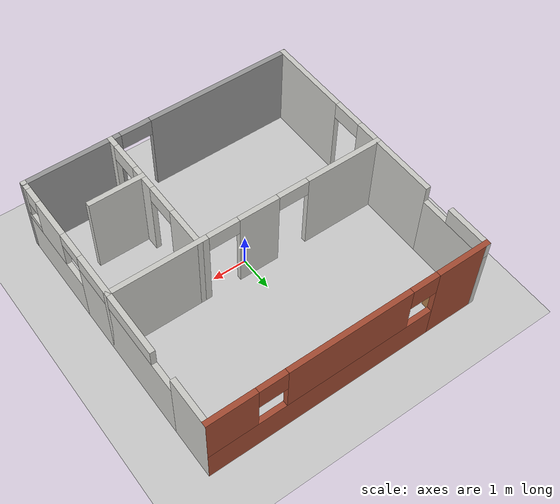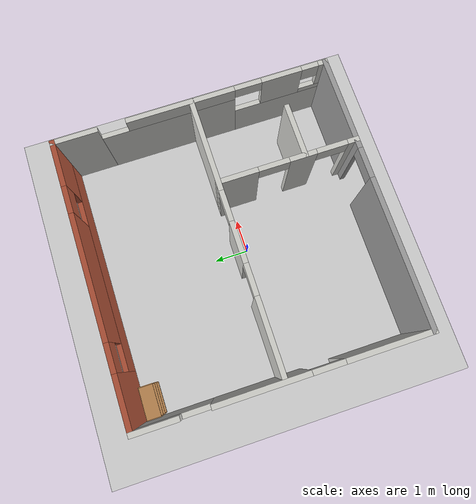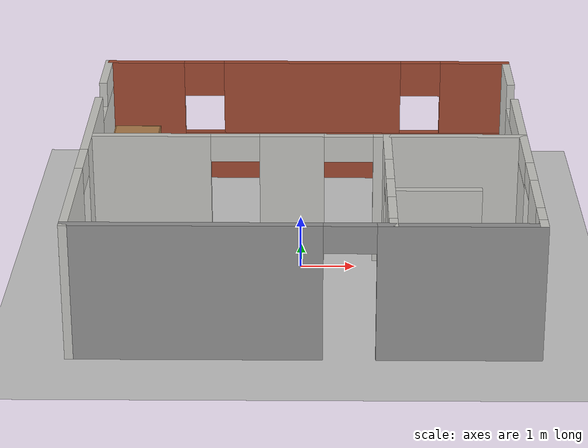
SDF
<sdf version="1.6">
 <world name="default">
  <model name="ground_plane">
   <static>1</static>
   <link name="link">
    <collision name="collision">
     <geometry><plane><normal>0 0 1</normal><size>100 100</size></plane></geometry>
     <surface><friction><ode><mu>100</mu><mu2>50</mu2></ode></friction></surface>
    </collision>
    <visual name="visual">
     <cast_shadows>0</cast_shadows>
     <geometry><plane><normal>0 0 1</normal><size>100 100</size></plane></geometry>
     <material>
      <script><uri>file://media/materials/scripts/gazebo.material</uri><name>Gazebo/Grey</name></script>
     </material>
    </visual>
   </link>
  </model>
  <model name="apartment_v2">
   <pose>0.079383 0.338435 0 0 -0 0</pose>
   <link name="Wall_0">
    <pose>-4 0 0 0 -0 1.5708</pose>
    <visual name="Wall_0_Visual_0">
     <pose>-2.83835 0 1.25 0 -0 0</pose>
     <geometry><box><size>2.47329 0.15 2.5</size></box></geometry>
     <material>
      <script><uri>file://media/materials/scripts/gazebo.material</uri><name>Gazebo/CeilingTiled</name></script>
      <ambient>1 1 1 1</ambient>
     </material>
     <meta><layer>0</layer></meta>
    </visual>
    <collision name="Wall_0_Collision_0">
     <geometry><box><size>2.47329 0.15 2.5</size></box></geometry>
     <pose>-2.83835 0 1.25 0 -0 0</pose>
    </collision>
    <visual name="Wall_0_Visual_1">
     <pose>0.623174 0 1.25 0 -0 0</pose>
     <geometry><box><size>2.64976 0.15 2.5</size></box></geometry>
     <material>
      <script><uri>file://media/materials/scripts/gazebo.material</uri><name>Gazebo/CeilingTiled</name></script>
      <ambient>1 1 1 1</ambient>
     </material>
     <meta><layer>0</layer></meta>
    </visual>
    <collision name="Wall_0_Collision_1">
     <geometry><box><size>2.64976 0.15 2.5</size></box></geometry>
     <pose>0.623174 0 1.25 0 -0 0</pose>
    </collision>
    <visual name="Wall_0_Visual_2">
     <pose>3.01153 0 1 0 -0 0</pose>
     <geometry><box><size>2.12695 0.15 2</size></box></geometry>
     <material>
      <script><uri>file://media/materials/scripts/gazebo.material</uri><name>Gazebo/CeilingTiled</name></script>
      <ambient>1 1 1 1</ambient>
     </material>
     <meta><layer>0</layer></meta>
    </visual>
    <collision name="Wall_0_Collision_2">
     <geometry><box><size>2.12695 0.15 2</size></box></geometry>
     <pose>3.01153 0 1 0 -0 0</pose>
    </collision>
    <visual name="Wall_0_Visual_3">
     <pose>-1.15171 0 2.25 0 -0 0</pose>
     <geometry><box><size>0.9 0.15 0.5</size></box></geometry>
     <material>
      <script><uri>file://media/materials/scripts/gazebo.material</uri><name>Gazebo/CeilingTiled</name></script>
      <ambient>1 1 1 1</ambient>
     </material>
     <meta><layer>0</layer></meta>
    </visual>
    <collision name="Wall_0_Collision_3">
     <geometry><box><size>0.9 0.15 0.5</size></box></geometry>
     <pose>-1.15171 0 2.25 0 -0 0</pose>
    </collision>
    <visual name="Wall_0_Visual_4">
     <pose>3.41153 0 2.25 0 -0 0</pose>
     <geometry><box><size>1.32695 0.15 0.5</size></box></geometry>
     <material>
      <script><uri>file://media/materials/scripts/gazebo.material</uri><name>Gazebo/CeilingTiled</name></script>
      <ambient>1 1 1 1</ambient>
     </material>
     <meta><layer>0</layer></meta>
    </visual>
    <collision name="Wall_0_Collision_4">
     <geometry><box><size>1.32695 0.15 0.5</size></box></geometry>
     <pose>3.41153 0 2.25 0 -0 0</pose>
    </collision>
   </link>
   <link name="Wall_1">
    <pose>0 4 0 0 -0 0</pose>
    <visual name="Wall_1_Visual_0">
     <pose>-3.27694 0 1.25 0 -0 0</pose>
     <geometry><box><size>1.59612 0.15 2.5</size></box></geometry>
     <material>
      <script><uri>file://media/materials/scripts/gazebo.material</uri><name>Gazebo/Bricks</name></script>
      <ambient>0.760784 0.662745 0.627451 1</ambient>
     </material>
     <meta><layer>0</layer></meta>
    </visual>
    <collision name="Wall_1_Collision_0">
     <geometry><box><size>1.59612 0.15 2.5</size></box></geometry>
     <pose>-3.27694 0 1.25 0 -0 0</pose>
    </collision>
    <visual name="Wall_1_Visual_1">
     <pose>0.79806 0 0.5 0 -0 0</pose>
     <geometry><box><size>6.55388 0.15 1</size></box></geometry>
     <material>
      <script><uri>file://media/materials/scripts/gazebo.material</uri><name>Gazebo/Bricks</name></script>
      <ambient>0.760784 0.662745 0.627451 1</ambient>
     </material>
     <meta><layer>0</layer></meta>
    </visual>
    <collision name="Wall_1_Collision_1">
     <geometry><box><size>6.55388 0.15 1</size></box></geometry>
     <pose>0.79806 0 0.5 0 -0 0</pose>
    </collision>
    <visual name="Wall_1_Visual_2">
     <pose>0.103442 0 1.75 0 -0 0</pose>
     <geometry><box><size>3.56465 0.15 1.5</size></box></geometry>
     <material>
      <script><uri>file://media/materials/scripts/gazebo.material</uri><name>Gazebo/Bricks</name></script>
      <ambient>0.760784 0.662745 0.627451 1</ambient>
     </material>
     <meta><layer>0</layer></meta>
    </visual>
    <collision name="Wall_1_Collision_2">
     <geometry><box><size>3.56465 0.15 1.5</size></box></geometry>
     <pose>0.103442 0 1.75 0 -0 0</pose>
    </collision>
    <visual name="Wall_1_Visual_3">
     <pose>3.38038 0 1.75 0 -0 0</pose>
     <geometry><box><size>1.38923 0.15 1.5</size></box></geometry>
     <material>
      <script><uri>file://media/materials/scripts/gazebo.material</uri><name>Gazebo/Bricks</name></script>
      <ambient>0.760784 0.662745 0.627451 1</ambient>
     </material>
     <meta><layer>0</layer></meta>
    </visual>
    <collision name="Wall_1_Collision_3">
     <geometry><box><size>1.38923 0.15 1.5</size></box></geometry>
     <pose>3.38038 0 1.75 0 -0 0</pose>
    </collision>
    <visual name="Wall_1_Visual_4">
     <pose>-2.07888 0 2.15 0 -0 0</pose>
     <geometry><box><size>0.8 0.15 0.7</size></box></geometry>
     <material>
      <script><uri>file://media/materials/scripts/gazebo.material</uri><name>Gazebo/Bricks</name></script>
      <ambient>0.760784 0.662745 0.627451 1</ambient>
     </material>
     <meta><layer>0</layer></meta>
    </visual>
    <collision name="Wall_1_Collision_4">
     <geometry><box><size>0.8 0.15 0.7</size></box></geometry>
     <pose>-2.07888 0 2.15 0 -0 0</pose>
    </collision>
    <visual name="Wall_1_Visual_5">
     <pose>2.28577 0 2.15 0 -0 0</pose>
     <geometry><box><size>0.8 0.15 0.7</size></box></geometry>
     <material>
      <script><uri>file://media/materials/scripts/gazebo.material</uri><name>Gazebo/Bricks</name></script>
      <ambient>0.760784 0.662745 0.627451 1</ambient>
     </material>
     <meta><layer>0</layer></meta>
    </visual>
    <collision name="Wall_1_Collision_5">
     <geometry><box><size>0.8 0.15 0.7</size></box></geometry>
     <pose>2.28577 0 2.15 0 -0 0</pose>
    </collision>
   </link>
   <link name="Wall_11">
    <collision name="Wall_11_Collision">
     <geometry><box><size>1.65 0.15 2.5</size></box></geometry>
     <pose>0 0 1.25 0 -0 0</pose>
    </collision>
    <visual name="Wall_11_Visual">
     <pose>0 0 1.25 0 -0 0</pose>
     <geometry><box><size>1.65 0.15 2.5</size></box></geometry>
     <material>
      <script><uri>file://media/materials/scripts/gazebo.material</uri><name>Gazebo/CeilingTiled</name></script>
      <ambient>1 1 1 1</ambient>
     </material>
     <meta><layer>0</layer></meta>
    </visual>
    <pose>2.25 -2.5 0 0 -0 0</pose>
   </link>
   <link name="Wall_2">
    <pose>4 0 0 0 0 -1.5708</pose>
    <visual name="Wall_2_Visual_0">
     <pose>-3.39141 0 1.25 0 -0 0</pose>
     <geometry><box><size>1.36717 0.15 2.5</size></box></geometry>
     <material>
      <script><uri>file://media/materials/scripts/gazebo.material</uri><name>Gazebo/CeilingTiled</name></script>
      <ambient>1 0.764706 0.305882 1</ambient>
     </material>
     <meta><layer>0</layer></meta>
    </visual>
    <collision name="Wall_2_Collision_0">
     <geometry><box><size>1.36717 0.15 2.5</size></box></geometry>
     <pose>-3.39141 0 1.25 0 -0 0</pose>
    </collision>
    <visual name="Wall_2_Visual_1">
     <pose>-0.716584 0 1 0 -0 0</pose>
     <geometry><box><size>3.98249 0.15 2</size></box></geometry>
     <material>
      <script><uri>file://media/materials/scripts/gazebo.material</uri><name>Gazebo/CeilingTiled</name></script>
      <ambient>1 0.764706 0.305882 1</ambient>
     </material>
     <meta><layer>0</layer></meta>
    </visual>
    <collision name="Wall_2_Collision_1">
     <geometry><box><size>3.98249 0.15 2</size></box></geometry>
     <pose>-0.716584 0 1 0 -0 0</pose>
    </collision>
    <visual name="Wall_2_Visual_2">
     <pose>2.67483 0 0.65 0 -0 0</pose>
     <geometry><box><size>2.80034 0.15 1.3</size></box></geometry>
     <material>
      <script><uri>file://media/materials/scripts/gazebo.material</uri><name>Gazebo/CeilingTiled</name></script>
      <ambient>1 0.764706 0.305882 1</ambient>
     </material>
     <meta><layer>0</layer></meta>
    </visual>
    <collision name="Wall_2_Collision_2">
     <geometry><box><size>2.80034 0.15 1.3</size></box></geometry>
     <pose>2.67483 0 0.65 0 -0 0</pose>
    </collision>
    <visual name="Wall_2_Visual_3">
     <pose>2.67671 0 1.9 0 -0 0</pose>
     <geometry><box><size>1.20409 0.15 1.2</size></box></geometry>
     <material>
      <script><uri>file://media/materials/scripts/gazebo.material</uri><name>Gazebo/CeilingTiled</name></script>
      <ambient>1 0.764706 0.305882 1</ambient>
     </material>
     <meta><layer>0</layer></meta>
    </visual>
    <collision name="Wall_2_Collision_3">
     <geometry><box><size>1.20409 0.15 1.2</size></box></geometry>
     <pose>2.67671 0 1.9 0 -0 0</pose>
    </collision>
    <visual name="Wall_2_Visual_4">
     <pose>3.67687 0 1.4 0 -0 0</pose>
     <geometry><box><size>0.796249 0.15 0.2</size></box></geometry>
     <material>
      <script><uri>file://media/materials/scripts/gazebo.material</uri><name>Gazebo/CeilingTiled</name></script>
      <ambient>1 0.764706 0.305882 1</ambient>
     </material>
     <meta><layer>0</layer></meta>
    </visual>
    <collision name="Wall_2_Collision_4">
     <geometry><box><size>0.796249 0.15 0.2</size></box></geometry>
     <pose>3.67687 0 1.4 0 -0 0</pose>
    </collision>
    <visual name="Wall_2_Visual_5">
     <pose>3.92687 0 2 0 -0 0</pose>
     <geometry><box><size>0.296249 0.15 1</size></box></geometry>
     <material>
      <script><uri>file://media/materials/scripts/gazebo.material</uri><name>Gazebo/CeilingTiled</name></script>
      <ambient>1 0.764706 0.305882 1</ambient>
     </material>
     <meta><layer>0</layer></meta>
    </visual>
    <collision name="Wall_2_Collision_5">
     <geometry><box><size>0.296249 0.15 1</size></box></geometry>
     <pose>3.92687 0 2 0 -0 0</pose>
    </collision>
    <visual name="Wall_2_Visual_6">
     <pose>3.52875 0 2.25 0 -0 0</pose>
     <geometry><box><size>0.5 0.15 0.5</size></box></geometry>
     <material>
      <script><uri>file://media/materials/scripts/gazebo.material</uri><name>Gazebo/CeilingTiled</name></script>
      <ambient>1 0.764706 0.305882 1</ambient>
     </material>
     <meta><layer>0</layer></meta>
    </visual>
    <collision name="Wall_2_Collision_6">
     <geometry><box><size>0.5 0.15 0.5</size></box></geometry>
     <pose>3.52875 0 2.25 0 -0 0</pose>
    </collision>
    <visual name="Wall_2_Visual_7">
     <pose>-0.316584 0 2.25 0 -0 0</pose>
     <geometry><box><size>3.18249 0.15 0.5</size></box></geometry>
     <material>
      <script><uri>file://media/materials/scripts/gazebo.material</uri><name>Gazebo/CeilingTiled</name></script>
      <ambient>1 0.764706 0.305882 1</ambient>
     </material>
     <meta><layer>0</layer></meta>
    </visual>
    <collision name="Wall_2_Collision_7">
     <geometry><box><size>3.18249 0.15 0.5</size></box></geometry>
     <pose>-0.316584 0 2.25 0 -0 0</pose>
    </collision>
    <visual name="Wall_2_Visual_8">
     <pose>1.67466 0 2.3 0 -0 0</pose>
     <geometry><box><size>0.8 0.15 0.4</size></box></geometry>
     <material>
      <script><uri>file://media/materials/scripts/gazebo.material</uri><name>Gazebo/CeilingTiled</name></script>
      <ambient>1 0.764706 0.305882 1</ambient>
     </material>
     <meta><layer>0</layer></meta>
    </visual>
    <collision name="Wall_2_Collision_8">
     <geometry><box><size>0.8 0.15 0.4</size></box></geometry>
     <pose>1.67466 0 2.3 0 -0 0</pose>
    </collision>
   </link>
   <link name="Wall_3">
    <pose>0 -4 0 0 -0 3.14159</pose>
    <visual name="Wall_3_Visual_0">
     <pose>-2.65112 0 1.25 0 -0 0</pose>
     <geometry><box><size>2.84775 0.15 2.5</size></box></geometry>
     <material>
      <script><uri>file://media/materials/scripts/gazebo.material</uri><name>Gazebo/Grey</name></script>
      <ambient>1 1 1 1</ambient>
     </material>
     <meta><layer>0</layer></meta>
    </visual>
    <collision name="Wall_3_Collision_0">
     <geometry><box><size>2.84775 0.15 2.5</size></box></geometry>
     <pose>-2.65112 0 1.25 0 -0 0</pose>
    </collision>
    <visual name="Wall_3_Visual_1">
     <pose>1.87388 0 1.25 0 -0 0</pose>
     <geometry><box><size>4.40225 0.15 2.5</size></box></geometry>
     <material>
      <script><uri>file://media/materials/scripts/gazebo.material</uri><name>Gazebo/Grey</name></script>
      <ambient>1 1 1 1</ambient>
     </material>
     <meta><layer>0</layer></meta>
    </visual>
    <collision name="Wall_3_Collision_1">
     <geometry><box><size>4.40225 0.15 2.5</size></box></geometry>
     <pose>1.87388 0 1.25 0 -0 0</pose>
    </collision>
    <visual name="Wall_3_Visual_2">
     <pose>-0.777247 0 2.25 0 -0 0</pose>
     <geometry><box><size>0.9 0.15 0.5</size></box></geometry>
     <material>
      <script><uri>file://media/materials/scripts/gazebo.material</uri><name>Gazebo/Grey</name></script>
      <ambient>1 1 1 1</ambient>
     </material>
     <meta><layer>0</layer></meta>
    </visual>
    <collision name="Wall_3_Collision_2">
     <geometry><box><size>0.9 0.15 0.5</size></box></geometry>
     <pose>-0.777247 0 2.25 0 -0 0</pose>
    </collision>
   </link>
   <link name="Wall_7">
    <visual name="Wall_7_Visual_0">
     <pose>-2.90972 0 1.25 0 -0 0</pose>
     <geometry><box><size>2.33055 0.15 2.5</size></box></geometry>
     <material>
      <script><uri>file://media/materials/scripts/gazebo.material</uri><name>Gazebo/CeilingTiled</name></script>
      <ambient>1 1 1 1</ambient>
     </material>
     <meta><layer>0</layer></meta>
    </visual>
    <collision name="Wall_7_Collision_0">
     <geometry><box><size>2.33055 0.15 2.5</size></box></geometry>
     <pose>-2.90972 0 1.25 0 -0 0</pose>
    </collision>
    <visual name="Wall_7_Visual_1">
     <pose>-0.248545 0 1.25 0 -0 0</pose>
     <geometry><box><size>1.19181 0.15 2.5</size></box></geometry>
     <material>
      <script><uri>file://media/materials/scripts/gazebo.material</uri><name>Gazebo/CeilingTiled</name></script>
      <ambient>1 1 1 1</ambient>
     </material>
     <meta><layer>0</layer></meta>
    </visual>
    <collision name="Wall_7_Collision_1">
     <geometry><box><size>1.19181 0.15 2.5</size></box></geometry>
     <pose>-0.248545 0 1.25 0 -0 0</pose>
    </collision>
    <visual name="Wall_7_Visual_2">
     <pose>2.66118 0 1.25 0 -0 0</pose>
     <geometry><box><size>2.82764 0.15 2.5</size></box></geometry>
     <material>
      <script><uri>file://media/materials/scripts/gazebo.material</uri><name>Gazebo/CeilingTiled</name></script>
      <ambient>1 1 1 1</ambient>
     </material>
     <meta><layer>0</layer></meta>
    </visual>
    <collision name="Wall_7_Collision_2">
     <geometry><box><size>2.82764 0.15 2.5</size></box></geometry>
     <pose>2.66118 0 1.25 0 -0 0</pose>
    </collision>
    <visual name="Wall_7_Visual_3">
     <pose>-1.29445 0 2.25 0 -0 0</pose>
     <geometry><box><size>0.9 0.15 0.5</size></box></geometry>
     <material>
      <script><uri>file://media/materials/scripts/gazebo.material</uri><name>Gazebo/CeilingTiled</name></script>
      <ambient>1 1 1 1</ambient>
     </material>
     <meta><layer>0</layer></meta>
    </visual>
    <collision name="Wall_7_Collision_3">
     <geometry><box><size>0.9 0.15 0.5</size></box></geometry>
     <pose>-1.29445 0 2.25 0 -0 0</pose>
    </collision>
    <visual name="Wall_7_Visual_4">
     <pose>0.797361 0 2.25 0 -0 0</pose>
     <geometry><box><size>0.9 0.15 0.5</size></box></geometry>
     <material>
      <script><uri>file://media/materials/scripts/gazebo.material</uri><name>Gazebo/CeilingTiled</name></script>
      <ambient>1 1 1 1</ambient>
     </material>
     <meta><layer>0</layer></meta>
    </visual>
    <collision name="Wall_7_Collision_4">
     <geometry><box><size>0.9 0.15 0.5</size></box></geometry>
     <pose>0.797361 0 2.25 0 -0 0</pose>
    </collision>
   </link>
   <link name="Wall_9">
    <pose>1.5 -2 0 0 0 -1.5708</pose>
    <visual name="Wall_9_Visual_0">
     <pose>-1.4654 0 1.25 0 -0 0</pose>
     <geometry><box><size>1.21921 0.15 2.5</size></box></geometry>
     <material>
      <script><uri>file://media/materials/scripts/gazebo.material</uri><name>Gazebo/CeilingTiled</name></script>
      <ambient>1 1 1 1</ambient>
     </material>
     <meta><layer>0</layer></meta>
    </visual>
    <collision name="Wall_9_Collision_0">
     <geometry><box><size>1.21921 0.15 2.5</size></box></geometry>
     <pose>-1.4654 0 1.25 0 -0 0</pose>
    </collision>
    <visual name="Wall_9_Visual_1">
     <pose>0.438976 0 1.25 0 -0 0</pose>
     <geometry><box><size>0.78954 0.15 2.5</size></box></geometry>
     <material>
      <script><uri>file://media/materials/scripts/gazebo.material</uri><name>Gazebo/CeilingTiled</name></script>
      <ambient>1 1 1 1</ambient>
     </material>
     <meta><layer>0</layer></meta>
    </visual>
    <collision name="Wall_9_Collision_1">
     <geometry><box><size>0.78954 0.15 2.5</size></box></geometry>
     <pose>0.438976 0 1.25 0 -0 0</pose>
    </collision>
    <visual name="Wall_9_Visual_2">
     <pose>1.90437 0 1.25 0 -0 0</pose>
     <geometry><box><size>0.341254 0.15 2.5</size></box></geometry>
     <material>
      <script><uri>file://media/materials/scripts/gazebo.material</uri><name>Gazebo/CeilingTiled</name></script>
      <ambient>1 1 1 1</ambient>
     </material>
     <meta><layer>0</layer></meta>
    </visual>
    <collision name="Wall_9_Collision_2">
     <geometry><box><size>0.341254 0.15 2.5</size></box></geometry>
     <pose>1.90437 0 1.25 0 -0 0</pose>
    </collision>
    <visual name="Wall_9_Visual_3">
     <pose>-0.405794 0 2.25 0 -0 0</pose>
     <geometry><box><size>0.9 0.15 0.5</size></box></geometry>
     <material>
      <script><uri>file://media/materials/scripts/gazebo.material</uri><name>Gazebo/CeilingTiled</name></script>
      <ambient>1 1 1 1</ambient>
     </material>
     <meta><layer>0</layer></meta>
    </visual>
    <collision name="Wall_9_Collision_3">
     <geometry><box><size>0.9 0.15 0.5</size></box></geometry>
     <pose>-0.405794 0 2.25 0 -0 0</pose>
    </collision>
    <visual name="Wall_9_Visual_4">
     <pose>1.28375 0 2.25 0 -0 0</pose>
     <geometry><box><size>0.9 0.15 0.5</size></box></geometry>
     <material>
      <script><uri>file://media/materials/scripts/gazebo.material</uri><name>Gazebo/CeilingTiled</name></script>
      <ambient>1 1 1 1</ambient>
     </material>
     <meta><layer>0</layer></meta>
    </visual>
    <collision name="Wall_9_Collision_4">
     <geometry><box><size>0.9 0.15 0.5</size></box></geometry>
     <pose>1.28375 0 2.25 0 -0 0</pose>
    </collision>
   </link>
   <static>1</static>
  </model>
  <model name="bookshelf">
   <static>1</static>
   <link name="link">
    <inertial><mass>1</mass></inertial>
    <collision name="back">
     <pose>0 0.005 0.6 0 -0 0</pose>
     <geometry><box><size>0.9 0.01 1.2</size></box></geometry>
    </collision>
    <visual name="visual1">
     <pose>0 0.005 0.6 0 -0 0</pose>
     <geometry><box><size>0.9 0.01 1.2</size></box></geometry>
     <material>
      <script><uri>file://media/materials/scripts/gazebo.material</uri><name>Gazebo/Wood</name></script>
     </material>
    </visual>
    <collision name="left_side">
     <pose>0.45 -0.195 0.6 0 -0 0</pose>
     <geometry><box><size>0.02 0.4 1.2</size></box></geometry>
    </collision>
    <visual name="visual2">
     <pose>0.45 -0.195 0.6 0 -0 0</pose>
     <geometry><box><size>0.02 0.4 1.2</size></box></geometry>
     <material>
      <script><uri>file://media/materials/scripts/gazebo.material</uri><name>Gazebo/Wood</name></script>
     </material>
    </visual>
    <collision name="right_side">
     <pose>-0.45 -0.195 0.6 0 -0 0</pose>
     <geometry><box><size>0.02 0.4 1.2</size></box></geometry>
    </collision>
    <visual name="visual3">
     <pose>-0.45 -0.195 0.6 0 -0 0</pose>
     <geometry><box><size>0.02 0.4 1.2</size></box></geometry>
     <material>
      <script><uri>file://media/materials/scripts/gazebo.material</uri><name>Gazebo/Wood</name></script>
     </material>
    </visual>
    <collision name="bottom">
     <pose>0 -0.195 0.03 0 -0 0</pose>
     <geometry><box><size>0.88 0.4 0.06</size></box></geometry>
    </collision>
    <visual name="visual4">
     <pose>0 -0.195 0.03 0 -0 0</pose>
     <geometry><box><size>0.88 0.4 0.06</size></box></geometry>
     <material>
      <script><uri>file://media/materials/scripts/gazebo.material</uri><name>Gazebo/Wood</name></script>
     </material>
    </visual>
    <collision name="top">
     <pose>0 -0.195 1.19 0 -0 0</pose>
     <geometry><box><size>0.88 0.4 0.02</size></box></geometry>
    </collision>
    <visual name="visual5">
     <pose>0 -0.195 1.19 0 -0 0</pose>
     <geometry><box><size>0.88 0.4 0.02</size></box></geometry>
     <material>
      <script><uri>file://media/materials/scripts/gazebo.material</uri><name>Gazebo/Wood</name></script>
     </material>
    </visual>
    <collision name="low_shelf">
     <pose>0 -0.195 0.43 0 -0 0</pose>
     <geometry><box><size>0.88 0.4 0.02</size></box></geometry>
    </collision>
    <visual name="visual6">
     <pose>0 -0.195 0.43 0 -0 0</pose>
     <geometry><box><size>0.88 0.4 0.02</size></box></geometry>
     <material>
      <script><uri>file://media/materials/scripts/gazebo.material</uri><name>Gazebo/Wood</name></script>
     </material>
    </visual>
    <collision name="high_shelf">
     <pose>0 -0.195 0.8 0 -0 0</pose>
     <geometry><box><size>0.88 0.4 0.02</size></box></geometry>
    </collision>
    <visual name="visual7">
     <pose>0 -0.195 0.8 0 -0 0</pose>
     <geometry><box><size>0.88 0.4 0.02</size></box></geometry>
     <material>
      <script><uri>file://media/materials/scripts/gazebo.material</uri><name>Gazebo/Wood</name></script>
     </material>
    </visual>
   </link>
   <pose>-3.35568 4.10261 0 0 -0 0</pose>
  </model>
 </world>
</sdf>
